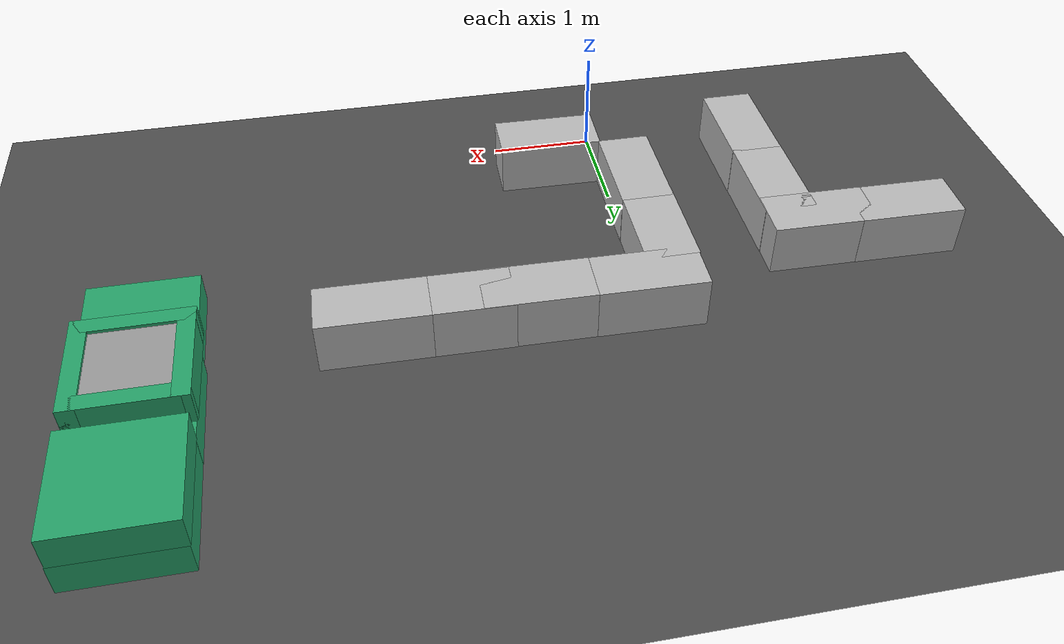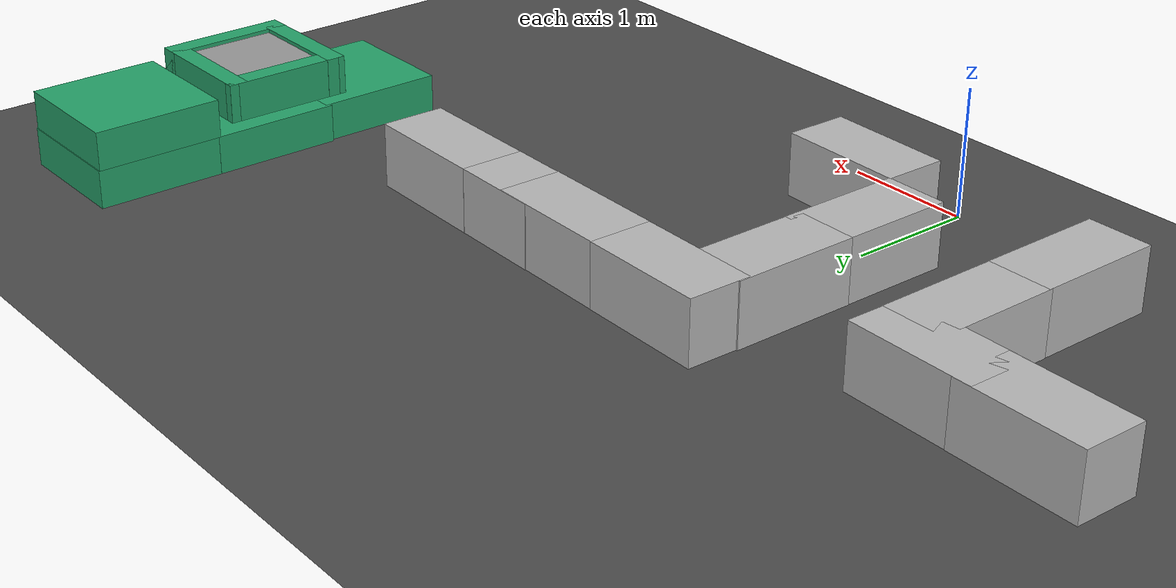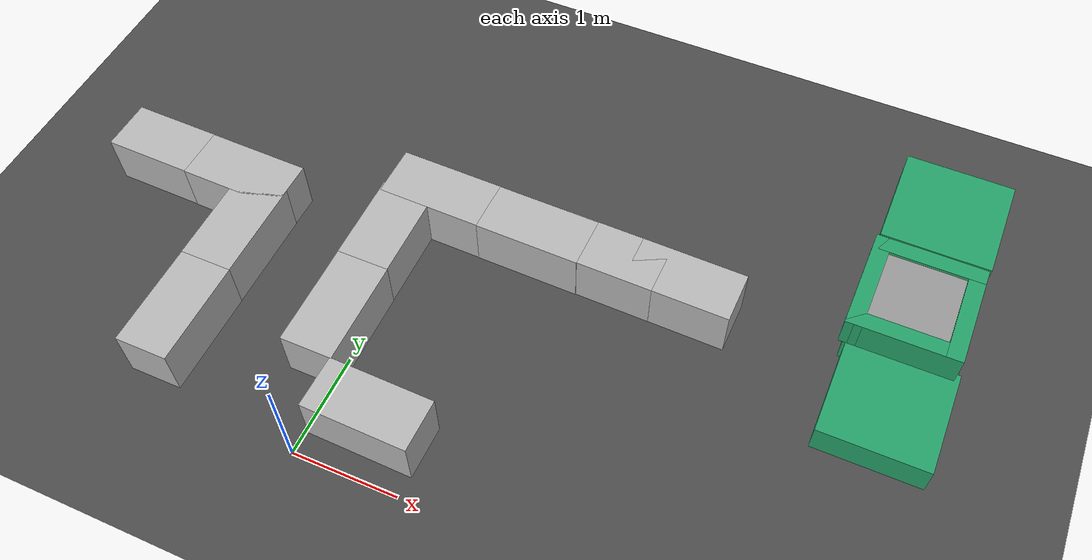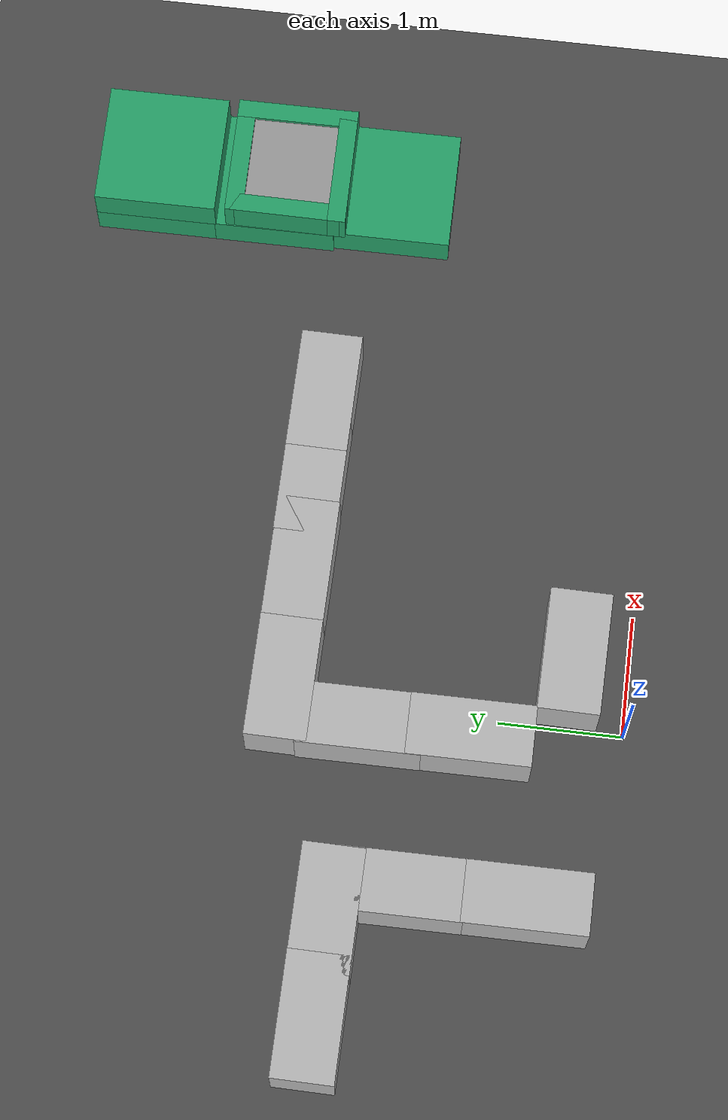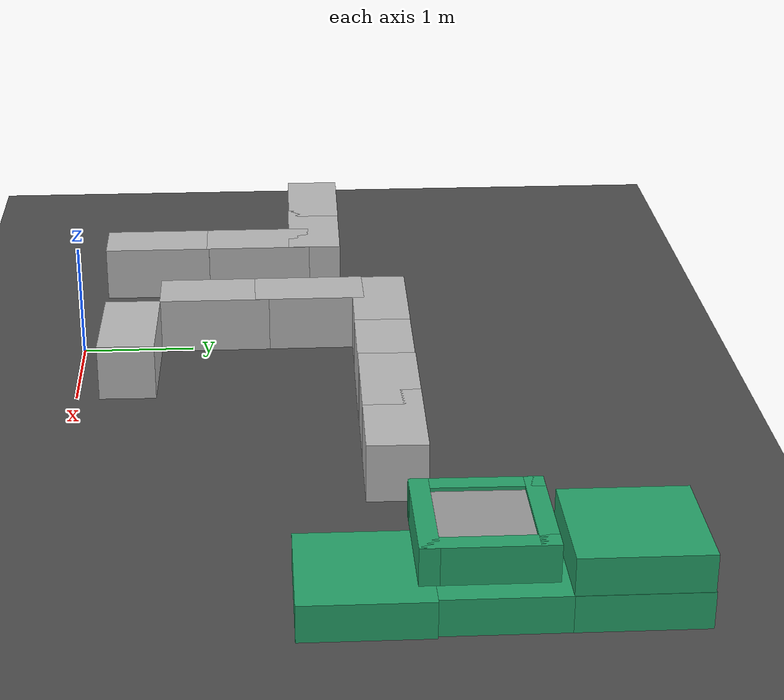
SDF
<sdf version="1.7">
 <world name="default">
  <model name="ground_plane">
   <static>1</static>
   <link name="link">
    <collision name="collision">
     <geometry><plane><normal>0 0 1</normal><size>100 100</size></plane></geometry>
    </collision>
    <visual name="visual">
     <cast_shadows>0</cast_shadows>
     <geometry><plane><normal>0 0 1</normal><size>100 100</size></plane></geometry>
     <material>
      <script><uri>file://media/materials/scripts/gazebo.material</uri><name>Gazebo/DarkGray</name></script>
     </material>
    </visual>
   </link>
  </model>
  <model name="greenBox">
   <pose>4.47659 2.3282 0 0 -0 0</pose>
   <link name="Wall_0">
    <collision name="Wall_0_Collision">
     <geometry><box><size>1 1 0.3</size></box></geometry>
     <pose>0 0 0.15 0 -0 0</pose>
    </collision>
    <visual name="Wall_0_Visual">
     <pose>0 0 0.15 0 -0 0</pose>
     <geometry><box><size>1 1 0.3</size></box></geometry>
     <material>
      <script><uri>file://media/materials/scripts/gazebo.material</uri><name>Gazebo/Grey</name></script>
      <ambient>0.14902 0.635294 0.411765 1</ambient>
     </material>
     <meta><layer>0</layer></meta>
    </visual>
   </link>
   <static>1</static>
  </model>
  <model name="greenBoxIsae">
   <pose>4.41117 3.1887 0.396123 0 -0 0</pose>
   <link name="Wall_0">
    <collision name="Wall_0_Collision">
     <geometry><box><size>0.75 0.75 0.27</size></box></geometry>
     <pose>0 0 0.135 0 -0 0</pose>
    </collision>
    <visual name="Wall_0_Visual">
     <pose>0 0 0.135 0 -0 0</pose>
     <geometry><box><size>0.75 0.75 0.27</size></box></geometry>
     <material>
      <script><uri>file://media/materials/scripts/gazebo.material</uri><name>Gazebo/Grey</name></script>
      <ambient>1 1 1 1</ambient>
     </material>
     <meta><layer>0</layer></meta>
    </visual>
    <pose>0.005242 -0.002 0 0 -0 0</pose>
   </link>
   <link name="Wall_2">
    <collision name="Wall_2_Collision">
     <geometry><box><size>1 0.15 0.3</size></box></geometry>
     <pose>0 0 0.15 0 -0 0</pose>
    </collision>
    <visual name="Wall_2_Visual">
     <pose>0 0 0.15 0 -0 0</pose>
     <geometry><box><size>1 0.15 0.3</size></box></geometry>
     <material>
      <script><uri>file://media/materials/scripts/gazebo.material</uri><name>Gazebo/Grey</name></script>
      <ambient>0.14902 0.635294 0.411765 1</ambient>
     </material>
     <meta><layer>0</layer></meta>
    </visual>
    <pose>0.004242 0.425 0 0 -0 0</pose>
   </link>
   <link name="Wall_3">
    <collision name="Wall_3_Collision">
     <geometry><box><size>1 0.15 0.3</size></box></geometry>
     <pose>0 0 0.15 0 -0 0</pose>
    </collision>
    <visual name="Wall_3_Visual">
     <pose>0 0 0.15 0 -0 0</pose>
     <geometry><box><size>1 0.15 0.3</size></box></geometry>
     <material>
      <script><uri>file://media/materials/scripts/gazebo.material</uri><name>Gazebo/Grey</name></script>
      <ambient>0.14902 0.635294 0.411765 1</ambient>
     </material>
     <meta><layer>0</layer></meta>
    </visual>
    <pose>0.429242 0 0 0 -0 -1.5708</pose>
   </link>
   <link name="Wall_4">
    <collision name="Wall_4_Collision">
     <geometry><box><size>1.00844 0.15 0.3</size></box></geometry>
     <pose>0 0 0.15 0 -0 0</pose>
    </collision>
    <visual name="Wall_4_Visual">
     <pose>0 0 0.15 0 -0 0</pose>
     <geometry><box><size>1.00844 0.15 0.3</size></box></geometry>
     <material>
      <script><uri>file://media/materials/scripts/gazebo.material</uri><name>Gazebo/Grey</name></script>
      <ambient>0.14902 0.635294 0.411765 1</ambient>
     </material>
     <meta><layer>0</layer></meta>
    </visual>
    <pose>0.000242 -0.425 0 0 -0 3.14159</pose>
   </link>
   <link name="Wall_5">
    <collision name="Wall_5_Collision">
     <geometry><box><size>1 0.15 0.3</size></box></geometry>
     <pose>0 0 0.15 0 -0 0</pose>
    </collision>
    <visual name="Wall_5_Visual">
     <pose>0 0 0.15 0 -0 0</pose>
     <geometry><box><size>1 0.15 0.3</size></box></geometry>
     <material>
      <script><uri>file://media/materials/scripts/gazebo.material</uri><name>Gazebo/Grey</name></script>
      <ambient>0.14902 0.635294 0.411765 1</ambient>
     </material>
     <meta><layer>0</layer></meta>
    </visual>
    <pose>-0.424758 0 0 0 -0 1.56139</pose>
   </link>
   <static>1</static>
  </model>
  <model name="greenBox_clone">
   <pose>4.4502 4.28651 0 0 -0 0</pose>
   <link name="Wall_0">
    <collision name="Wall_0_Collision">
     <geometry><box><size>1 1 0.3</size></box></geometry>
     <pose>0 0 0.15 0 -0 0</pose>
    </collision>
    <visual name="Wall_0_Visual">
     <pose>0 0 0.15 0 -0 0</pose>
     <geometry><box><size>1 1 0.3</size></box></geometry>
     <material>
      <script><uri>file://media/materials/scripts/gazebo.material</uri><name>Gazebo/Grey</name></script>
      <ambient>0.14902 0.635294 0.411765 1</ambient>
     </material>
     <meta><layer>0</layer></meta>
    </visual>
   </link>
   <static>1</static>
  </model>
  <model name="greenBox_clone_0">
   <pose>4.44994 3.29369 0 0 -0 0</pose>
   <link name="Wall_0">
    <collision name="Wall_0_Collision">
     <geometry><box><size>1 1 0.3</size></box></geometry>
     <pose>0 0 0.15 0 -0 0</pose>
    </collision>
    <visual name="Wall_0_Visual">
     <pose>0 0 0.15 0 -0 0</pose>
     <geometry><box><size>1 1 0.3</size></box></geometry>
     <material>
      <script><uri>file://media/materials/scripts/gazebo.material</uri><name>Gazebo/Grey</name></script>
      <ambient>0.14902 0.635294 0.411765 1</ambient>
     </material>
     <meta><layer>0</layer></meta>
    </visual>
   </link>
   <static>1</static>
  </model>
  <model name="greenBox_clone_1">
   <pose>4.44478 4.28112 0.299784 0 -0 0</pose>
   <link name="Wall_0">
    <collision name="Wall_0_Collision">
     <geometry><box><size>1 1 0.3</size></box></geometry>
     <pose>0 0 0.15 0 -0 0</pose>
    </collision>
    <visual name="Wall_0_Visual">
     <pose>0 0 0.15 0 -0 0</pose>
     <geometry><box><size>1 1 0.3</size></box></geometry>
     <material>
      <script><uri>file://media/materials/scripts/gazebo.material</uri><name>Gazebo/Grey</name></script>
      <ambient>0.14902 0.635294 0.411765 1</ambient>
     </material>
     <meta><layer>0</layer></meta>
    </visual>
   </link>
   <static>1</static>
  </model>
  <model name="bat_res_isae_clone_2_clone_clone_0_clone">
   <static>1</static>
   <link name="body">
    <visual name="visual">
     <geometry>
      <mesh><uri>file://models/bat_res_isae/bat_isae/bat_isae.dae</uri><scale>1 1 1</scale></mesh>
     </geometry>
    </visual>
    <collision name="collision">
     <geometry>
      <mesh><uri>file://models/bat_res_isae/bat_isae/bat_isae.dae</uri><scale>1 1 1</scale></mesh>
     </geometry>
    </collision>
   </link>
   <pose>-1.47927 0.643231 0 0 -0 0</pose>
  </model>
  <model name="bat_res_isae_clone_2_clone_clone_0_clone_0">
   <static>1</static>
   <link name="body">
    <visual name="visual">
     <geometry>
      <mesh><uri>file://models/bat_res_isae/bat_isae/bat_isae.dae</uri><scale>1 1 1</scale></mesh>
     </geometry>
    </visual>
    <collision name="collision">
     <geometry>
      <mesh><uri>file://models/bat_res_isae/bat_isae/bat_isae.dae</uri><scale>1 1 1</scale></mesh>
     </geometry>
    </collision>
   </link>
   <pose>-1.48149 1.62112 0 0 -0 0</pose>
  </model>
  <model name="bat_res_isae_clone_2_clone_0">
   <static>1</static>
   <link name="body">
    <visual name="visual">
     <geometry>
      <mesh><uri>file://models/bat_res_isae/bat_isae/bat_isae.dae</uri><scale>1 1 1</scale></mesh>
     </geometry>
    </visual>
    <collision name="collision">
     <geometry>
      <mesh><uri>file://models/bat_res_isae/bat_isae/bat_isae.dae</uri><scale>1 1 1</scale></mesh>
     </geometry>
    </collision>
   </link>
   <pose>-2.58044 2.19576 0 0 0 -1.58744</pose>
  </model>
  <model name="bat_res_isae_clone_2_clone_1">
   <static>1</static>
   <link name="body">
    <visual name="visual">
     <geometry>
      <mesh><uri>file://models/bat_res_isae/bat_isae/bat_isae.dae</uri><scale>1 1 1</scale></mesh>
     </geometry>
    </visual>
    <collision name="collision">
     <geometry>
      <mesh><uri>file://models/bat_res_isae/bat_isae/bat_isae.dae</uri><scale>1 1 1</scale></mesh>
     </geometry>
    </collision>
   </link>
   <pose>-1.73408 2.179 0 0 0 -1.58744</pose>
  </model>
  <model name="bat_res_isae_clone_2_clone_3_clone">
   <static>1</static>
   <link name="body">
    <visual name="visual">
     <geometry>
      <mesh><uri>file://models/bat_res_isae/bat_isae/bat_isae.dae</uri><scale>1 1 1</scale></mesh>
     </geometry>
    </visual>
    <collision name="collision">
     <geometry>
      <mesh><uri>file://models/bat_res_isae/bat_isae/bat_isae.dae</uri><scale>1 1 1</scale></mesh>
     </geometry>
    </collision>
   </link>
   <pose>0.532421 0.46053 0 0 0 -1.58744</pose>
  </model>
  <model name="bat_res_isae_clone_2_clone_clone_clone_clone">
   <static>1</static>
   <link name="body">
    <visual name="visual">
     <geometry>
      <mesh><uri>file://models/bat_res_isae/bat_isae/bat_isae.dae</uri><scale>1 1 1</scale></mesh>
     </geometry>
    </visual>
    <collision name="collision">
     <geometry>
      <mesh><uri>file://models/bat_res_isae/bat_isae/bat_isae.dae</uri><scale>1 1 1</scale></mesh>
     </geometry>
    </collision>
   </link>
   <pose>-0.200061 1.21352 0 0 -0 0</pose>
  </model>
  <model name="bat_res_isae_clone_2_clone_clone_clone_clone_0">
   <static>1</static>
   <link name="body">
    <visual name="visual">
     <geometry>
      <mesh><uri>file://models/bat_res_isae/bat_isae/bat_isae.dae</uri><scale>1 1 1</scale></mesh>
     </geometry>
    </visual>
    <collision name="collision">
     <geometry>
      <mesh><uri>file://models/bat_res_isae/bat_isae/bat_isae.dae</uri><scale>1 1 1</scale></mesh>
     </geometry>
    </collision>
   </link>
   <pose>-0.203148 2.08615 0 0 -0 0</pose>
  </model>
  <model name="bat_res_isae_clone_2_clone_1_clone">
   <static>1</static>
   <link name="body">
    <visual name="visual">
     <geometry>
      <mesh><uri>file://models/bat_res_isae/bat_isae/bat_isae.dae</uri><scale>1 1 1</scale></mesh>
     </geometry>
    </visual>
    <collision name="collision">
     <geometry>
      <mesh><uri>file://models/bat_res_isae/bat_isae/bat_isae.dae</uri><scale>1 1 1</scale></mesh>
     </geometry>
    </collision>
   </link>
   <pose>0.059889 2.73041 0 0 0 -1.58744</pose>
  </model>
  <model name="bat_res_isae_clone_2_clone_1_clone_0">
   <static>1</static>
   <link name="body">
    <visual name="visual">
     <geometry>
      <mesh><uri>file://models/bat_res_isae/bat_isae/bat_isae.dae</uri><scale>1 1 1</scale></mesh>
     </geometry>
    </visual>
    <collision name="collision">
     <geometry>
      <mesh><uri>file://models/bat_res_isae/bat_isae/bat_isae.dae</uri><scale>1 1 1</scale></mesh>
     </geometry>
    </collision>
   </link>
   <pose>1.05744 2.71172 0 0 0 -1.58744</pose>
  </model>
  <model name="bat_res_isae_clone_2_clone_1_clone_1">
   <static>1</static>
   <link name="body">
    <visual name="visual">
     <geometry>
      <mesh><uri>file://models/bat_res_isae/bat_isae/bat_isae.dae</uri><scale>1 1 1</scale></mesh>
     </geometry>
    </visual>
    <collision name="collision">
     <geometry>
      <mesh><uri>file://models/bat_res_isae/bat_isae/bat_isae.dae</uri><scale>1 1 1</scale></mesh>
     </geometry>
    </collision>
   </link>
   <pose>2.49886 2.69303 0 0 0 -1.58744</pose>
  </model>
  <model name="bat_res_isae_clone_2_clone_1_clone_2">
   <static>1</static>
   <link name="body">
    <visual name="visual">
     <geometry>
      <mesh><uri>file://models/bat_res_isae/bat_isae/bat_isae.dae</uri><scale>1 1 1</scale></mesh>
     </geometry>
    </visual>
    <collision name="collision">
     <geometry>
      <mesh><uri>file://models/bat_res_isae/bat_isae/bat_isae.dae</uri><scale>1 1 1</scale></mesh>
     </geometry>
    </collision>
   </link>
   <pose>1.77512 2.70425 0 0 0 -1.58744</pose>
  </model>
 </world>
</sdf>
